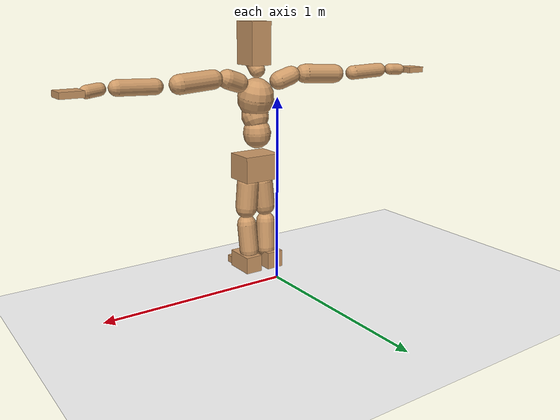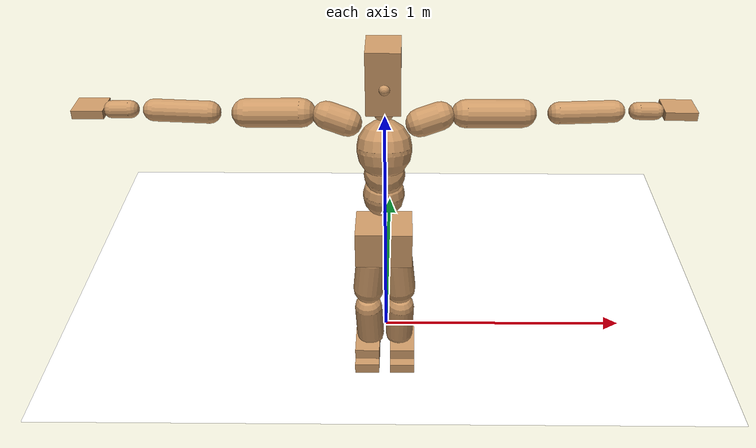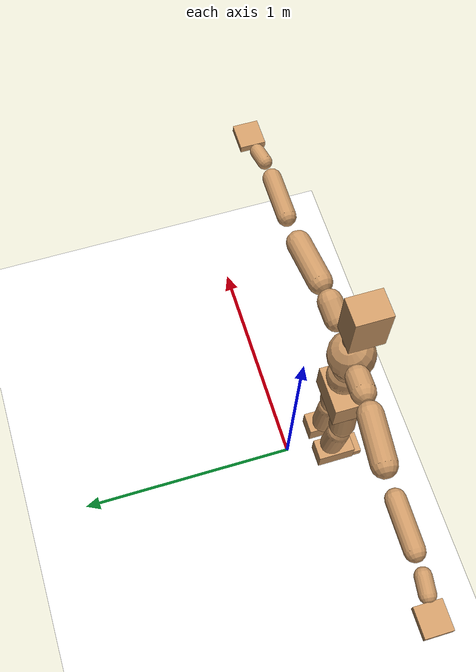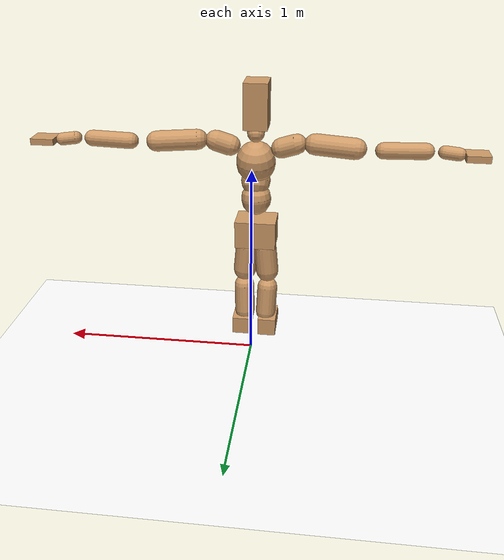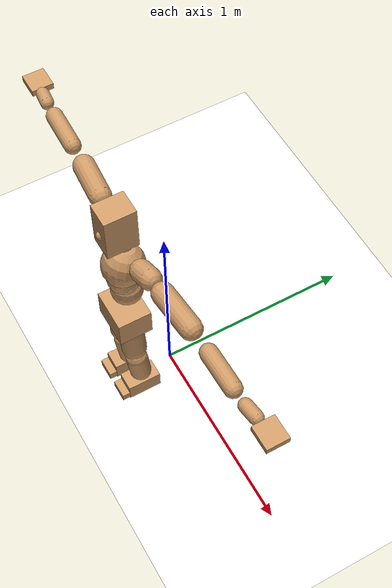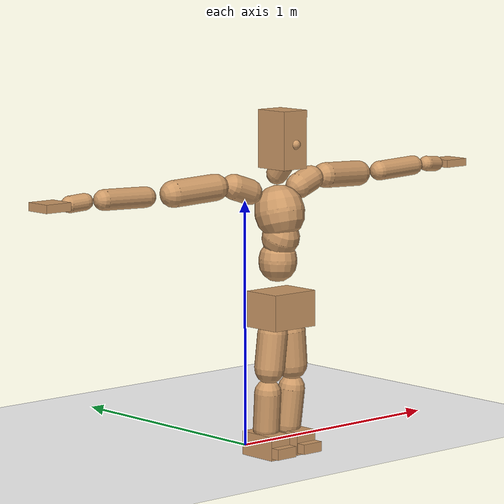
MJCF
<mujoco model="humanoid">
  <option integrator="implicitfast" />

  <visual>
    <global offwidth="1280" offheight="960" />
    <headlight active="1" ambient="0.34 0.34 0.34" diffuse="0.5 0.5 0.5" />
  </visual>

  <default>
    <joint damping="2" stiffness="2" armature="0.01" limited="true" solimplimit="0 .99 .01" />
    <geom condim="1" friction="0.7 0.005 0.0001" solimp=".99 .99 .003" solref="0.015 1" margin="0.001" rgba="0.8 0.6 .4 1" />
    <default class="smplcontact">
      <geom condim="3" friction="1. 0.005 0.0001" solref="0.015 1" solimp="0.98 0.98 0.001" priority="1" />
    </default>
    <default class="stiff_medium">
      <joint stiffness="10" />
    </default>
    <default class="stiff_medium_higher">
      <joint stiffness="50" />
    </default>
    <default class="stiff_high">
      <joint stiffness="100" />
    </default>
  </default>

  <asset>
    <texture type="skybox" builtin="gradient" rgb1="0.99 0.99 0.99" rgb2="0.608 0.828 0.892" width="100" />
    <texture builtin="flat" height="1278" mark="cross" markrgb="1 1 1" name="texgeom" random="0.01" rgb1="0.8 0.6 0.4" rgb2="0.8 0.6 0.4" type="cube" width="127" />
    <texture name="texplane" type="2d" builtin="checker" markrgb="1 1 1" rgb1="0.756 0.772 0.76" rgb2="0.6 0.6 0.6" width="100" height="100" />
    <material name="MatPlane" reflectance="0.5" texture="texplane" texrepeat="1 1" texuniform="true" />
    <material name="geom" texture="texgeom" texuniform="true" />
  </asset>

  <worldbody>
    <light name="tracking_light" pos="0 0 7" dir="0 0 -1" directional="true" cutoff="100" exponent="1" diffuse="1 1 1" specular="0.1 0.1 0.1" mode="trackcom" />
    <camera name="back" pos="0 3 2.4" xyaxes="-1 0 0 0 -1 2" mode="trackcom" />
    <camera name="side" pos="-3 0 2.4" xyaxes="0 -1 0 1 0 2" mode="trackcom" />
    <camera name="front_side" pos="-2.8 -2.8 0.8" xyaxes="0.5 -0.5 0 0.1 0.1 1" mode="trackcom" />
    <geom condim="3" name="floor" pos="0 0 0" rgba="1 1 1 1" size="100 100 .2" type="plane" material="MatPlane" />
    <body name="Pelvis" pos="-0.0018 -0.2233 0.603363" euler="90 0 0">
      <site name="Pelvis" size="0.01" />
      <freejoint name="Pelvis" />
      <geom type="box" pos="-0.0000 -0.0121 -0.0055" size="0.1069 0.0722 0.083" quat="1.0000 0.0000 0.0000 0.0000" density="3165.830099" name="Pelvis" />
      <body name="L_Hip" pos="0.0434375 -0.057125 -0.00425">
        <joint name="L_Hip_x" type="hinge" pos="0 0 0" axis="1 0 0" stiffness="4.682612346938775" range="-160.0 22.92" class="stiff_medium" damping="5.761376063259234" armature="0.003150516248715215"/>
        <joint name="L_Hip_y" type="hinge" pos="0 0 0" axis="0 1 0" stiffness="4.729285204081632" range="-70.0 70.0" class="stiff_medium" damping="5.227190951440424" armature="0.005777516910851337"/>
        <joint name="L_Hip_z" type="hinge" pos="0 0 0" axis="0 0 1" stiffness="4.725288673469388" range="-28.65 90.0" class="stiff_medium" damping="3.8557989532863886" armature="0.003146302077085307"/>
        <geom type="capsule" density="2040.816327" fromto="0.0043125 -0.046875 -0.0005625 0.017125 -0.187625 -0.00225" size="0.0615" name="L_Hip" />
        <body name="L_Knee" pos="0.0214375 -0.2345 -0.0028125">
          <joint name="L_Knee_x" type="hinge" pos="0 0 0" axis="1 0 0" range="-5.16 171.89" damping="3.3147767653831246" armature="0.0034682055009749293" stiffness="0.9900423469387756"/>
          <joint name="L_Knee_y" type="hinge" pos="0 0 0" axis="0 1 0" range="-4.58 6.88" damping="4.406653617352897" armature="0.006327520325715418" stiffness="0.9590346565349543"/>
          <joint name="L_Knee_z" type="hinge" pos="0 0 0" axis="0 0 1" range="-6.88 4.58" damping="3.327252622723652" armature="0.003445606353385676" stiffness="1.0040513265306124"/>
          <geom type="capsule" density="1234.567901" fromto="-0.0016875 -0.04975 -0.0054375 -0.0068125 -0.199 -0.021875" size="0.0541" name="L_Knee" />
          <body name="L_Ankle" pos="-0.0085 -0.24875 -0.0273125">
            <joint name="L_Ankle_x" type="hinge" pos="0 0 0" axis="1 0 0" range="-45.84 45.84" class="stiff_medium" damping="3.6717736084900636" armature="0.005991965080890731" stiffness="6.25"/>
            <joint name="L_Ankle_y" type="hinge" pos="0 0 0" axis="0 1 0" range="-74.48 22.92" class="stiff_medium" damping="1.8585891029846908" armature="0.006141072806637222" stiffness="6.25"/>
            <joint name="L_Ankle_z" type="hinge" pos="0 0 0" axis="0 0 1" range="-4.58 4.58" class="stiff_medium" damping="4.001717943795472" armature="0.00711722066741985" stiffness="6.25"/>
            <geom type="box" pos="0.0145625 -0.0149375 0.015125" size="0.0483 0.0464 0.085" quat="1.0000 0.0000 0.0000 0.0000" density="449.071558" name="L_Ankle" class="smplcontact" />
            <body name="L_Toe" pos="0.0165 -0.034875 0.0745625">
              <joint name="L_Toe_x" type="hinge" pos="0 0 0" axis="1 0 0" range="-91.67 22.92" armature="0.0076832299147366915" damping="1.3859319891986666" stiffness="1.25"/>
              <joint name="L_Toe_y" type="hinge" pos="0 0 0" axis="0 1 0" range="-4.58 4.58" armature="0.008367648440754674" damping="1.446344395428927" stiffness="1.25"/>
              <joint name="L_Toe_z" type="hinge" pos="0 0 0" axis="0 0 1" range="-4.58 4.58" armature="0.009751505861704143" damping="1.5613700603719913" stiffness="1.25"/>
              <geom type="box" pos="-0.001875 0.0034375 0.0155" size="0.0478 0.02 0.0496" quat="1.0000 0.0000 0.0000 0.0000" density="423.206892" name="L_Toe" class="smplcontact" />
            </body>
          </body>
        </body>
      </body>
      <body name="R_Hip" pos="-0.0423125 -0.0565625 -0.0026875">
        <joint name="R_Hip_x" type="hinge" pos="0 0 0" axis="1 0 0" stiffness="4.682612346938775" range="-160.0 22.92" class="stiff_medium" damping="5.761376063259234" armature="0.003150516248715215"/>
        <joint name="R_Hip_y" type="hinge" pos="0 0 0" axis="0 1 0" stiffness="4.729285204081632" range="-70.0 70.0" class="stiff_medium" damping="5.227190951440424" armature="0.005777516910851337"/>
        <joint name="R_Hip_z" type="hinge" pos="0 0 0" axis="0 0 1" stiffness="4.725288673469388" range="-90.0 28.65" class="stiff_medium" damping="3.8557989532863886" armature="0.003146302077085307"/>
        <geom type="capsule" density="2040.816327" fromto="-0.0048125 -0.0478125 -0.001125 -0.019125 -0.191312 -0.0044375" size="0.0606" name="R_Hip" />
        <body name="R_Knee" pos="-0.0239375 -0.239125 -0.0055625">
          <joint name="R_Knee_x" type="hinge" pos="0 0 0" axis="1 0 0" range="-5.16 171.89" damping="3.3147767653831246" armature="0.0034682055009749293" stiffness="0.9900423469387756"/>
          <joint name="R_Knee_y" type="hinge" pos="0 0 0" axis="0 1 0" range="-6.88 4.58" damping="4.406653617352897" armature="0.006327520325715418" stiffness="0.9590346565349543"/>
          <joint name="R_Knee_z" type="hinge" pos="0 0 0" axis="0 0 1" range="-4.58 6.88" damping="3.327252622723652" armature="0.003445606353385676" stiffness="1.0040513265306124"/>
          <geom type="capsule" density="1234.567901" fromto="0.002 -0.0498125 -0.0053125 0.007875 -0.199187 -0.021125" size="0.0541" name="R_Knee" />
          <body name="R_Ankle" pos="0.009875 -0.249 -0.0264375">
            <joint name="R_Ankle_x" type="hinge" pos="0 0 0" axis="1 0 0" range="-45.84 45.84" class="stiff_medium" damping="3.6717736084900636" armature="0.005991965080890731" stiffness="6.25"/>
            <joint name="R_Ankle_y" type="hinge" pos="0 0 0" axis="0 1 0" range="-22.92 74.48" class="stiff_medium" damping="1.8585891029846908" armature="0.006141072806637222" stiffness="6.25"/>
            <joint name="R_Ankle_z" type="hinge" pos="0 0 0" axis="0 0 1" range="-4.58 4.58" class="stiff_medium" damping="4.001717943795472" armature="0.00711722066741985" stiffness="6.25"/>
            <geom type="box" pos="-0.01325 -0.010875 0.016" size="0.0483 0.0478 0.0865" quat="1.0000 0.0000 0.0000 0.0000" density="434.700981" name="R_Ankle" class="smplcontact" />
            <body name="R_Toe" pos="-0.015875 -0.0300625 0.0770625">
              <joint name="R_Toe_x" type="hinge" pos="0 0 0" axis="1 0 0" range="-91.67 22.92" armature="0.0076832299147366915" damping="1.3859319891986666" stiffness="1.25"/>
              <joint name="R_Toe_y" type="hinge" pos="0 0 0" axis="0 1 0" range="-4.58 4.58" armature="0.008367648440754674" damping="1.446344395428927" stiffness="1.25"/>
              <joint name="R_Toe_z" type="hinge" pos="0 0 0" axis="0 0 1" range="-4.58 4.58" armature="0.009751505861704143" damping="1.5613700603719913" stiffness="1.25"/>
              <geom type="box" pos="0.002625 0.0028125 0.0141875" size="0.0479 0.0216 0.0493" quat="1.0000 0.0000 0.0000 0.0000" density="407.384095" name="R_Toe" class="smplcontact" />
            </body>
          </body>
        </body>
      </body>
      <body name="Torso" pos="-0.0025 0.109 -0.0267">
        <joint name="Torso_x" type="hinge" pos="0 0 0" axis="1 0 0" range="-25.78 57.3" class="stiff_medium" damping="16.944789177371327" armature="0.011576079564418832" stiffness="11.023723673469387"/>
        <joint name="Torso_y" type="hinge" pos="0 0 0" axis="0 1 0" range="-57.3 57.3" class="stiff_high" damping="29.115087567135376" armature="0.01937626790595331" stiffness="109.37198124999998"/>
        <joint name="Torso_z" type="hinge" pos="0 0 0" axis="0 0 1" range="-34.38 34.38" class="stiff_high" damping="24.640771515328716" armature="0.014228244849331774" stiffness="106.68350652173912"/>
        <geom type="capsule" density="2040.816327" fromto="0.0025 0.0608 0.0005 0.003 0.0743 0.0006" size="0.0769" name="Torso" />
        <body name="Spine" pos="0.0055 0.1352 0.0011">
          <joint name="Spine_x" type="hinge" pos="0 0 0" axis="1 0 0" stiffness="11.23382224489796" range="-25.78 57.3" class="stiff_medium" damping="17.41106230963079" armature="0.011993349058515367"/>
          <joint name="Spine_y" type="hinge" pos="0 0 0" axis="0 1 0" stiffness="11.67224088888889" range="-57.3 57.3" class="stiff_high" damping="12.051053820080996" armature="0.019440876268553408"/>
          <joint name="Spine_z" type="hinge" pos="0 0 0" axis="0 0 1" stiffness="22.9563125" range="-34.38 34.38" class="stiff_high" damping="16.317554444807218" armature="0.016109257231005376"/>
          <geom type="capsule" density="2040.816327" fromto="0.0007 0.0238 0.0114 0.0008 0.0291 0.014" size="0.0755" name="Spine" />
          <body name="Chest" pos="0.0015 0.0529 0.0254">
            <joint name="Chest_x" type="hinge" pos="0 0 0" axis="1 0 0" stiffness="11.776115531914895" range="-25.78 57.3" class="stiff_medium" damping="18.021102303759772" armature="0.012256829035287797"/>
            <joint name="Chest_y" type="hinge" pos="0 0 0" axis="0 1 0" stiffness="13.448267333333334" range="-57.3 57.3" class="stiff_high" damping="12.937740431789006" armature="0.01944780358729065"/>
            <joint name="Chest_z" type="hinge" pos="0 0 0" axis="0 0 1" stiffness="23.267014782608697" range="-34.38 34.38" class="stiff_high" damping="16.847528832624963" armature="0.016943348915127984"/>
            <geom type="capsule" density="2040.816327" fromto="-0.0009 0.0682 -0.0173 -0.001 0.0833 -0.0212" size="0.1002" name="Chest" />
            <body name="Neck" pos="-0.0028 0.2139 -0.0429">
              <joint name="Neck_x" type="hinge" pos="0 0 0" axis="1 0 0" range="-28.65 57.3" class="stiff_medium_higher" damping="10.0" armature="0.01" stiffness="50.0"/>
              <joint name="Neck_y" type="hinge" pos="0 0 0" axis="0 1 0" range="-40.11 40.11" class="stiff_medium_higher" damping="10.0" armature="0.010000000000000002" stiffness="50.0"/>
              <joint name="Neck_z" type="hinge" pos="0 0 0" axis="0 0 1" range="-40.11 40.11" class="stiff_medium_higher" damping="9.999999999999984" armature="0.009999999999999969" stiffness="50.0"/>
              <geom type="capsule" density="1000" fromto="0.001 0.013 0.0103 0.0041 0.052 0.0411" size="0.0436" name="Neck" />
              <body name="Head" pos="0.0052 0.065 0.0513">
                <joint name="Head_x" type="hinge" pos="0 0 0" axis="1 0 0" range="-28.65 57.3" class="stiff_medium_higher" damping="1.9999999999999967" armature="0.009999999999999967" stiffness="50.0"/>
                <joint name="Head_y" type="hinge" pos="0 0 0" axis="0 1 0" range="-40.11 40.11" class="stiff_medium_higher" damping="2.0" armature="0.01" stiffness="50.0"/>
                <joint name="Head_z" type="hinge" pos="0 0 0" axis="0 0 1" range="-40.11 40.11" class="stiff_medium_higher" damping="1.9999999999999947" armature="0.009999999999999946" stiffness="50.0"/>
                <geom type="box" pos="-0.0042 0.0876 -0.0116" size="0.0606 0.1154 0.076" quat="1.0000 0.0000 0.0000 0.0000" density="1018.069894" name="Head" />
                <geom type="capsule" name="nose" size="0.02 0.01" pos="0 0.07 0.05" quat="1 0 0 0" mass="0" contype="0" conaffinity="0" />
              </body>
            </body>
            <body name="L_Thorax" pos="0.10244 0.15821 -0.04433">
              <joint name="L_Thorax_x" type="hinge" pos="0 0 0" axis="1 0 0" range="-10.89 4.58" class="stiff_medium_higher" damping="31.58973579795788" armature="0.01622387350427033" stiffness="76.88603214285715"/>
              <joint name="L_Thorax_y" type="hinge" pos="0 0 0" axis="0 1 0" range="-28.65 17.19" class="stiff_medium_higher" damping="34.89989559971406" armature="0.01967496307175568" stiffness="77.38278265306123"/>
              <joint name="L_Thorax_z" type="hinge" pos="0 0 0" axis="0 0 1" range="-31.51 40.11" class="stiff_medium_higher" damping="34.901462278801546" armature="0.019678125977203684" stiffness="77.37729132653061"/>
              <geom type="capsule" density="1000" fromto="0.02366 0.00793 -0.00234 0.09464 0.03172 -0.00923" size="0.0521" name="L_Thorax" />
              <body name="L_Shoulder" pos="0.1183 0.03965 -0.01157">
                <joint name="L_Shoulder_x" type="hinge" pos="0 0 0" axis="1 0 0" range="-97.4 97.4" class="stiff_medium" damping="9.029989056679014" armature="0.014800063709014077" stiffness="15.304120000000001"/>
                <joint name="L_Shoulder_y" type="hinge" pos="0 0 0" axis="0 1 0" range="-108.86 80.21" class="stiff_medium" damping="10.416659800941957" armature="0.019521721968520908" stiffness="15.439610408163267"/>
                <joint name="L_Shoulder_z" type="hinge" pos="0 0 0" axis="0 0 1" range="-97.4 85.94" class="stiff_medium" damping="10.414978319288075" armature="0.019525527681653103" stiffness="15.431617857142857"/>
                <geom type="capsule" density="1000" fromto="0.06747 -0.00338 -0.00715 0.27001 -0.01326 -0.0286" size="0.0517" name="L_Shoulder" />
                <body name="L_Elbow" pos="0.33748 -0.01664 -0.03575">
                  <joint name="L_Elbow_x" type="hinge" pos="0 0 0" axis="1 0 0" range="-17.19 4.58" damping="6.893935965131492" armature="0.012655354053031611" stiffness="3.0043475918367353"/>
                  <joint name="L_Elbow_y" type="hinge" pos="0 0 0" axis="0 1 0" range="-180.0 17.19" damping="8.400044856786582" armature="0.018780901424265525" stiffness="3.005638632653061"/>
                  <joint name="L_Elbow_z" type="hinge" pos="0 0 0" axis="0 0 1" range="-100.84 4.58" damping="8.401427491655665" armature="0.01880082195466484" stiffness="3.003442469387755"/>
                  <geom type="capsule" density="1000" fromto="0.06474 0.00234 -0.00026 0.25922 0.00936 -0.00117" size="0.0405" name="L_Elbow" />
                  <body name="L_Wrist" pos="0.32396 0.0117 -0.00156">
                    <joint name="L_Wrist_x" type="hinge" pos="0 0 0" axis="1 0 0" range="-180.0 22.92" armature="0.012290327941728517" damping="2.5957833940279498" stiffness="2.7412171020408165"/>
                    <joint name="L_Wrist_y" type="hinge" pos="0 0 0" axis="0 1 0" range="-17.19 17.19" armature="0.016530608092611455" damping="3.0218064127612245" stiffness="2.7619413469387752"/>
                    <joint name="L_Wrist_z" type="hinge" pos="0 0 0" axis="0 0 1" range="-22.92 22.92" armature="0.016761001490566033" damping="3.0381836187287843" stiffness="2.7535823877551024"/>
                    <geom type="capsule" density="1000" fromto="0.02184 -0.00208 -0.0039 0.08736 -0.00845 -0.0156" size="0.0318" name="L_Wrist" class="smplcontact" />
                    <body name="L_Hand" pos="0.1092 -0.01066 -0.01937">
                      <joint name="L_Hand_x" type="hinge" pos="0 0 0" axis="1 0 0" range="-17.19 17.19" armature="0.010300606507591879" damping="2.314371487887754" stiffness="2.5999999999999996"/>
                      <joint name="L_Hand_y" type="hinge" pos="0 0 0" axis="0 1 0" range="-51.57 51.57" armature="0.013635420978089568" damping="2.662784052191723" stiffness="2.5999999999999996"/>
                      <joint name="L_Hand_z" type="hinge" pos="0 0 0" axis="0 0 1" range="-91.67 91.67" armature="0.014524361339042313" damping="2.7482117633657714" stiffness="2.5999999999999996"/>
                      <geom type="box" pos="0.06409 0.0013 -0.00754" size="0.0585 0.0158 0.0538" quat="1.0000 0.0000 0.0000 0.0000" density="400.552564" name="L_Hand" class="smplcontact" />
                    </body>
                  </body>
                </body>
              </body>
            </body>
            <body name="R_Thorax" pos="-0.10634 0.15444 -0.05018">
              <joint name="R_Thorax_x" type="hinge" pos="0 0 0" axis="1 0 0" range="-10.89 4.58" class="stiff_medium_higher" damping="31.58973579795788" armature="0.01622387350427033" stiffness="76.88603214285715"/>
              <joint name="R_Thorax_y" type="hinge" pos="0 0 0" axis="0 1 0" range="-17.19 28.65" class="stiff_medium_higher" damping="34.89989559971406" armature="0.01967496307175568" stiffness="77.38278265306123"/>
              <joint name="R_Thorax_z" type="hinge" pos="0 0 0" axis="0 0 1" range="-40.11 31.51" class="stiff_medium_higher" damping="34.901462278801546" armature="0.019678125977203684" stiffness="77.37729132653061"/>
              <geom type="capsule" density="1000" fromto="-0.02496 0.00845 -0.00234 -0.09984 0.0338 -0.00949" size="0.0511" name="R_Thorax" />
              <body name="R_Shoulder" pos="-0.1248 0.04238 -0.01183">
                <joint name="R_Shoulder_x" type="hinge" pos="0 0 0" axis="1 0 0" range="-97.4 97.4" class="stiff_medium" damping="9.029989056679014" armature="0.014800063709014077" stiffness="15.304120000000001"/>
                <joint name="R_Shoulder_y" type="hinge" pos="0 0 0" axis="0 1 0" range="-80.21 108.86" class="stiff_medium" damping="10.416659800941957" armature="0.019521721968520908" stiffness="15.439610408163267"/>
                <joint name="R_Shoulder_z" type="hinge" pos="0 0 0" axis="0 0 1" range="-85.94 97.4" class="stiff_medium" damping="10.414978319288075" armature="0.019525527681653103" stiffness="15.431617857142857"/>
                <geom type="capsule" density="1000" fromto="-0.06591 -0.00351 -0.00559 -0.2639 -0.01391 -0.02223" size="0.0531" name="R_Shoulder" />
                <body name="R_Elbow" pos="-0.32981 -0.01729 -0.02782">
                  <joint name="R_Elbow_x" type="hinge" pos="0 0 0" axis="1 0 0" range="-17.19 4.58" damping="6.893935965131492" armature="0.012655354053031611" stiffness="3.0043475918367353"/>
                  <joint name="R_Elbow_y" type="hinge" pos="0 0 0" axis="0 1 0" range="-17.19 180.0" damping="8.400044856786582" armature="0.018780901424265525" stiffness="3.005638632653061"/>
                  <joint name="R_Elbow_z" type="hinge" pos="0 0 0" axis="0 0 1" range="-4.58 100.84" damping="8.401427491655665" armature="0.01880082195466484" stiffness="3.003442469387755"/>
                  <geom type="capsule" density="1000" fromto="-0.06643 0.00208 -0.00143 -0.26546 0.00806 -0.00572" size="0.0408" name="R_Elbow" />
                  <body name="R_Wrist" pos="-0.33189 0.01014 -0.00728">
                    <joint name="R_Wrist_x" type="hinge" pos="0 0 0" axis="1 0 0" range="-180.0 22.92" armature="0.012290327941728517" damping="2.5957833940279498" stiffness="2.7412171020408165"/>
                    <joint name="R_Wrist_y" type="hinge" pos="0 0 0" axis="0 1 0" range="-17.19 17.19" armature="0.016530608092611455" damping="3.0218064127612245" stiffness="2.7619413469387752"/>
                    <joint name="R_Wrist_z" type="hinge" pos="0 0 0" axis="0 0 1" range="-22.92 22.92" armature="0.016761001490566033" damping="3.0381836187287843" stiffness="2.7535823877551024"/>
                    <geom type="capsule" density="1000" fromto="-0.02197 -0.00156 -0.00273 -0.08801 -0.00637 -0.01079" size="0.0326" name="R_Wrist" class="smplcontact" />
                    <body name="R_Hand" pos="-0.10998 -0.00793 -0.01339">
                      <joint name="R_Hand_x" type="hinge" pos="0 0 0" axis="1 0 0" range="-17.19 17.19" armature="0.010300606507591879" damping="2.314371487887754" stiffness="2.5999999999999996"/>
                      <joint name="R_Hand_y" type="hinge" pos="0 0 0" axis="0 1 0" range="-51.57 51.57" armature="0.013635420978089568" damping="2.662784052191723" stiffness="2.5999999999999996"/>
                      <joint name="R_Hand_z" type="hinge" pos="0 0 0" axis="0 0 1" range="-91.67 91.67" armature="0.014524361339042313" damping="2.7482117633657714" stiffness="2.5999999999999996"/>
                      <geom type="box" pos="-0.06006 -0.00117 -0.01027" size="0.0569 0.0164 0.0546" quat="1.0000 0.0000 0.0000 0.0000" density="403.679611" name="R_Hand" class="smplcontact" />
                    </body>
                  </body>
                </body>
              </body>
            </body>
          </body>
        </body>
      </body>
    </body>
  </worldbody>
  <actuator>
    <general name="L_Hip_x" joint="L_Hip_x" biastype="affine" gainprm="134.5455305788832" biasprm="-100.82823820114426 -84.28702224489795 -0.7681834751012312" ctrllimited="true" ctrlrange="-1 1" forcerange="-168.5740444897959 168.5740444897959" />
    <general name="L_Hip_y" joint="L_Hip_y" biastype="affine" gainprm="104.00241357711633" biasprm="0.0 -85.12713367346939 -1.0454381902880847" ctrllimited="true" ctrlrange="-1 1" forcerange="-170.25426734693878 170.25426734693878" />
    <general name="L_Hip_z" joint="L_Hip_z" biastype="affine" gainprm="88.0675601736452" biasprm="45.53682947031718 -85.05519612244898 -0.7711597906572777" ctrllimited="true" ctrlrange="-1 1" forcerange="-170.11039224489795 170.11039224489795" />
    <general name="L_Knee_x" joint="L_Knee_x" biastype="affine" gainprm="137.6700859239888" biasprm="129.64548673316378 -89.1038112244898 -0.8286941913457812" ctrllimited="true" ctrlrange="-1 1" forcerange="-178.2076224489796 178.2076224489796" />
    <general name="L_Knee_y" joint="L_Knee_y" biastype="affine" gainprm="8.63194770327106" biasprm="1.7324153331172283 -86.3131190881459 -1.1016634043382243" ctrllimited="true" ctrlrange="-1 1" forcerange="-172.6262381762918 172.6262381762918" />
    <general name="L_Knee_z" joint="L_Knee_z" biastype="affine" gainprm="9.03712757714746" biasprm="-1.8137341559720035 -90.36461938775511 -0.831813155680913" ctrllimited="true" ctrlrange="-1 1" forcerange="-180.72923877551023 180.72923877551023" />
    <general name="L_Ankle_x" joint="L_Ankle_x" biastype="affine" gainprm="45.003314762673796" biasprm="0.0 -56.25 -1.2239245361633546" ctrllimited="true" ctrlrange="-1 1" forcerange="-112.5 112.5" />
    <general name="L_Ankle_y" joint="L_Ankle_y" biastype="affine" gainprm="47.811113196819676" biasprm="-25.309455815482774 -56.25 -1.2390594019897938" ctrllimited="true" ctrlrange="-1 1" forcerange="-112.5 112.5" />
    <general name="L_Ankle_z" joint="L_Ankle_z" biastype="affine" gainprm="4.496404485450391" biasprm="0.0 -56.25 -1.3339059812651575" ctrllimited="true" ctrlrange="-1 1" forcerange="-112.5 112.5" />
    <general name="L_Toe_x" joint="L_Toe_x" biastype="affine" gainprm="44.999387771856796" biasprm="-26.998061866787282 -45.0 -0.5543727956794666" ctrllimited="true" ctrlrange="-1 1" forcerange="-90.0 90.0" />
    <general name="L_Toe_y" joint="L_Toe_y" biastype="affine" gainprm="3.597123588360313" biasprm="0.0 -45.0 -0.5785377581715708" ctrllimited="true" ctrlrange="-1 1" forcerange="-90.0 90.0" />
    <general name="L_Toe_z" joint="L_Toe_z" biastype="affine" gainprm="3.597123588360313" biasprm="0.0 -45.0 -0.6245480241487966" ctrllimited="true" ctrlrange="-1 1" forcerange="-90.0 90.0" />
    <general name="R_Hip_x" joint="R_Hip_x" biastype="affine" gainprm="134.5455305788832" biasprm="-100.82823820114426 -84.28702224489795 -0.7681834751012312" ctrllimited="true" ctrlrange="-1 1" forcerange="-168.5740444897959 168.5740444897959" />
    <general name="R_Hip_y" joint="R_Hip_y" biastype="affine" gainprm="104.00241357711633" biasprm="0.0 -85.12713367346939 -1.0454381902880847" ctrllimited="true" ctrlrange="-1 1" forcerange="-170.25426734693878 170.25426734693878" />
    <general name="R_Hip_z" joint="R_Hip_z" biastype="affine" gainprm="88.0675601736452" biasprm="-45.53682947031718 -85.05519612244898 -0.7711597906572777" ctrllimited="true" ctrlrange="-1 1" forcerange="-170.11039224489795 170.11039224489795" />
    <general name="R_Knee_x" joint="R_Knee_x" biastype="affine" gainprm="137.6700859239888" biasprm="129.64548673316378 -89.1038112244898 -0.8286941913457812" ctrllimited="true" ctrlrange="-1 1" forcerange="-178.2076224489796 178.2076224489796" />
    <general name="R_Knee_y" joint="R_Knee_y" biastype="affine" gainprm="8.63194770327106" biasprm="-1.7324153331172283 -86.3131190881459 -1.1016634043382243" ctrllimited="true" ctrlrange="-1 1" forcerange="-172.6262381762918 172.6262381762918" />
    <general name="R_Knee_z" joint="R_Knee_z" biastype="affine" gainprm="9.03712757714746" biasprm="1.8137341559720035 -90.36461938775511 -0.831813155680913" ctrllimited="true" ctrlrange="-1 1" forcerange="-180.72923877551023 180.72923877551023" />
    <general name="R_Ankle_x" joint="R_Ankle_x" biastype="affine" gainprm="45.003314762673796" biasprm="0.0 -56.25 -1.2239245361633546" ctrllimited="true" ctrlrange="-1 1" forcerange="-112.5 112.5" />
    <general name="R_Ankle_y" joint="R_Ankle_y" biastype="affine" gainprm="47.811113196819676" biasprm="25.309455815482774 -56.25 -1.2390594019897938" ctrllimited="true" ctrlrange="-1 1" forcerange="-112.5 112.5" />
    <general name="R_Ankle_z" joint="R_Ankle_z" biastype="affine" gainprm="4.496404485450391" biasprm="0.0 -56.25 -1.3339059812651575" ctrllimited="true" ctrlrange="-1 1" forcerange="-112.5 112.5" />
    <general name="R_Toe_x" joint="R_Toe_x" biastype="affine" gainprm="44.999387771856796" biasprm="-26.998061866787282 -45.0 -0.5543727956794666" ctrllimited="true" ctrlrange="-1 1" forcerange="-90.0 90.0" />
    <general name="R_Toe_y" joint="R_Toe_y" biastype="affine" gainprm="3.597123588360313" biasprm="0.0 -45.0 -0.5785377581715708" ctrllimited="true" ctrlrange="-1 1" forcerange="-90.0 90.0" />
    <general name="R_Toe_z" joint="R_Toe_z" biastype="affine" gainprm="3.597123588360313" biasprm="0.0 -45.0 -0.6245480241487966" ctrllimited="true" ctrlrange="-1 1" forcerange="-90.0 90.0" />
    <general name="Torso_x" joint="Torso_x" biastype="affine" gainprm="191.81537709933156" biasprm="72.77347961207185 -264.5693681632653 -4.518610447299021" ctrllimited="true" ctrlrange="-1 1" forcerange="-396.85405224489796 396.85405224489796" />
    <general name="Torso_y" joint="Torso_y" biastype="affine" gainprm="262.51209058192023" biasprm="0.0 -262.492755 -5.823017513427075" ctrllimited="true" ctrlrange="-1 1" forcerange="-393.7391324999999 393.7391324999999" />
    <general name="Torso_z" joint="Torso_z" biastype="affine" gainprm="153.63556556747483" biasprm="0.0 -256.0404156521739 -4.928154303065743" ctrllimited="true" ctrlrange="-1 1" forcerange="-384.0606234782608 384.0606234782608" />
    <general name="Spine_x" joint="Spine_x" biastype="affine" gainprm="195.47114151254812" biasprm="74.16045234082229 -269.61173387755105 -4.642949949234877" ctrllimited="true" ctrlrange="-1 1" forcerange="-404.41760081632657 404.41760081632657" />
    <general name="Spine_y" joint="Spine_y" biastype="affine" gainprm="280.1544163778229" biasprm="0.0 -280.13378133333333 -6.025526910040498" ctrllimited="true" ctrlrange="-1 1" forcerange="-420.200672 420.200672" />
    <general name="Spine_z" joint="Spine_z" biastype="affine" gainprm="165.29762515644848" biasprm="0.0 -275.47575 -5.439184814935739" ctrllimited="true" ctrlrange="-1 1" forcerange="-413.213625 413.213625" />
    <general name="Chest_x" joint="Chest_x" biastype="affine" gainprm="204.90717188021173" biasprm="77.74041956745634 -282.62677276595747 -4.8056272810026055" ctrllimited="true" ctrlrange="-1 1" forcerange="-423.94015914893623 423.94015914893623" />
    <general name="Chest_y" joint="Chest_y" biastype="affine" gainprm="322.78219083444463" biasprm="0.0 -322.758416 -6.468870215894503" ctrllimited="true" ctrlrange="-1 1" forcerange="-484.1376240000001 484.1376240000001" />
    <general name="Chest_z" joint="Chest_z" biastype="affine" gainprm="167.53484637592376" biasprm="0.0 -279.20417739130437 -5.615842944208321" ctrllimited="true" ctrlrange="-1 1" forcerange="-418.8062660869566 418.8062660869566" />
    <general name="Neck_x" joint="Neck_x" biastype="affine" gainprm="27.00198885760427" biasprm="9.000662952534757 -36.0 -0.8" ctrllimited="true" ctrlrange="-1 1" forcerange="-72.0 72.0" />
    <general name="Neck_y" joint="Neck_y" biastype="affine" gainprm="25.20185626709732" biasprm="0.0 -36.0 -0.8" ctrllimited="true" ctrlrange="-1 1" forcerange="-72.0 72.0" />
    <general name="Neck_z" joint="Neck_z" biastype="affine" gainprm="25.20185626709732" biasprm="0.0 -36.0 -0.7999999999999988" ctrllimited="true" ctrlrange="-1 1" forcerange="-72.0 72.0" />
    <general name="Head_x" joint="Head_x" biastype="affine" gainprm="18.001325905069514" biasprm="6.000441968356505 -24.0 -0.7999999999999987" ctrllimited="true" ctrlrange="-1 1" forcerange="-48.0 48.0" />
    <general name="Head_y" joint="Head_y" biastype="affine" gainprm="16.801237511398213" biasprm="0.0 -24.0 -0.8" ctrllimited="true" ctrlrange="-1 1" forcerange="-48.0 48.0" />
    <general name="Head_z" joint="Head_z" biastype="affine" gainprm="16.801237511398213" biasprm="0.0 -24.0 -0.7999999999999979" ctrllimited="true" ctrlrange="-1 1" forcerange="-48.0 48.0" />
    <general name="L_Thorax_x" joint="L_Thorax_x" biastype="affine" gainprm="24.911299101430362" biasprm="-10.160975910150333 -184.52647714285715 -2.5271788638366304" ctrllimited="true" ctrlrange="-1 1" forcerange="-369.0529542857143 369.0529542857143" />
    <general name="L_Thorax_y" joint="L_Thorax_y" biastype="affine" gainprm="74.29294346554212" biasprm="-18.57323586638553 -185.71867836734694 -2.7919916479771247" ctrllimited="true" ctrlrange="-1 1" forcerange="-371.4373567346939 371.4373567346939" />
    <general name="L_Thorax_z" joint="L_Thorax_z" biastype="affine" gainprm="116.06638363736599" biasprm="13.937041319203399 -185.70549918367348 -2.7921169823041243" ctrllimited="true" ctrlrange="-1 1" forcerange="-371.41099836734696 371.41099836734696" />
    <general name="L_Shoulder_x" joint="L_Shoulder_x" biastype="affine" gainprm="124.8779970044095" biasprm="0.0 -73.459776 -2.4079970817810707" ctrllimited="true" ctrlrange="-1 1" forcerange="-146.919552 146.919552" />
    <general name="L_Shoulder_y" joint="L_Shoulder_y" biastype="affine" gainprm="122.27778721627745" biasprm="-18.528897253643354 -74.11012995918368 -2.777775946917856" ctrllimited="true" ctrlrange="-1 1" forcerange="-148.22025991836736 148.22025991836736" />
    <general name="L_Shoulder_z" joint="L_Shoulder_z" biastype="affine" gainprm="118.51062714799397" biasprm="-7.40772219437119 -74.0717657142857 -2.7773275518101537" ctrllimited="true" ctrlrange="-1 1" forcerange="-148.1435314285714 148.1435314285714" />
    <general name="L_Elbow_x" joint="L_Elbow_x" biastype="affine" gainprm="20.54747587592092" biasprm="-11.901868203737386 -108.15651330612246 -1.1030297544210388" ctrllimited="true" ctrlrange="-1 1" forcerange="-216.31302661224493 216.31302661224493" />
    <general name="L_Elbow_y" joint="L_Elbow_y" biastype="affine" gainprm="186.19650463217005" biasprm="-153.73321628461693 -108.20299077551019 -1.344007177085853" ctrllimited="true" ctrlrange="-1 1" forcerange="-216.40598155102037 216.40598155102037" />
    <general name="L_Elbow_z" joint="L_Elbow_z" biastype="affine" gainprm="99.4700192692226" biasprm="-90.82701626688834 -108.12392889795919 -1.3442283986649066" ctrllimited="true" ctrlrange="-1 1" forcerange="-216.24785779591838 216.24785779591838" />
    <general name="L_Wrist_x" joint="L_Wrist_x" biastype="affine" gainprm="29.125065357690858" biasprm="-22.545659700305933 -16.447302612244897 -1.03831335761118" ctrllimited="true" ctrlrange="-1 1" forcerange="-32.894605224489794 32.894605224489794" />
    <general name="L_Wrist_y" joint="L_Wrist_y" biastype="affine" gainprm="4.971860631693158" biasprm="0.0 -16.571648081632652 -1.20872256510449" ctrllimited="true" ctrlrange="-1 1" forcerange="-33.143296163265305 33.143296163265305" />
    <general name="L_Wrist_z" joint="L_Wrist_z" biastype="affine" gainprm="6.609084529125214" biasprm="0.0 -16.521494326530615 -1.215273447491514" ctrllimited="true" ctrlrange="-1 1" forcerange="-33.04298865306123 33.04298865306123" />
    <general name="L_Hand_x" joint="L_Hand_x" biastype="affine" gainprm="4.680344735318074" biasprm="0.0 -15.599999999999998 -0.9257485951551017" ctrllimited="true" ctrlrange="-1 1" forcerange="-31.199999999999996 31.199999999999996" />
    <general name="L_Hand_y" joint="L_Hand_y" biastype="affine" gainprm="14.041034205954219" biasprm="0.0 -15.599999999999998 -1.0651136208766894" ctrllimited="true" ctrlrange="-1 1" forcerange="-31.199999999999996 31.199999999999996" />
    <general name="L_Hand_z" joint="L_Hand_z" biastype="affine" gainprm="24.959115874729946" biasprm="0.0 -15.599999999999998 -1.0992847053463086" ctrllimited="true" ctrlrange="-1 1" forcerange="-31.199999999999996 31.199999999999996" />
    <general name="R_Thorax_x" joint="R_Thorax_x" biastype="affine" gainprm="24.911299101430362" biasprm="-10.160975910150333 -184.52647714285715 -2.5271788638366304" ctrllimited="true" ctrlrange="-1 1" forcerange="-369.0529542857143 369.0529542857143" />
    <general name="R_Thorax_y" joint="R_Thorax_y" biastype="affine" gainprm="74.29294346554212" biasprm="18.57323586638552 -185.71867836734694 -2.7919916479771247" ctrllimited="true" ctrlrange="-1 1" forcerange="-371.4373567346939 371.4373567346939" />
    <general name="R_Thorax_z" joint="R_Thorax_z" biastype="affine" gainprm="116.06638363736599" biasprm="-13.937041319203399 -185.70549918367348 -2.7921169823041243" ctrllimited="true" ctrlrange="-1 1" forcerange="-371.41099836734696 371.41099836734696" />
    <general name="R_Shoulder_x" joint="R_Shoulder_x" biastype="affine" gainprm="124.8779970044095" biasprm="0.0 -73.459776 -2.4079970817810707" ctrllimited="true" ctrlrange="-1 1" forcerange="-146.919552 146.919552" />
    <general name="R_Shoulder_y" joint="R_Shoulder_y" biastype="affine" gainprm="122.27778721627745" biasprm="18.528897253643354 -74.11012995918368 -2.777775946917856" ctrllimited="true" ctrlrange="-1 1" forcerange="-148.22025991836736 148.22025991836736" />
    <general name="R_Shoulder_z" joint="R_Shoulder_z" biastype="affine" gainprm="118.51062714799397" biasprm="7.407722194371173 -74.0717657142857 -2.7773275518101537" ctrllimited="true" ctrlrange="-1 1" forcerange="-148.1435314285714 148.1435314285714" />
    <general name="R_Elbow_x" joint="R_Elbow_x" biastype="affine" gainprm="20.54747587592092" biasprm="-11.901868203737386 -108.15651330612246 -1.1030297544210388" ctrllimited="true" ctrlrange="-1 1" forcerange="-216.31302661224493 216.31302661224493" />
    <general name="R_Elbow_y" joint="R_Elbow_y" biastype="affine" gainprm="186.19650463217005" biasprm="153.73321628461693 -108.20299077551019 -1.344007177085853" ctrllimited="true" ctrlrange="-1 1" forcerange="-216.40598155102037 216.40598155102037" />
    <general name="R_Elbow_z" joint="R_Elbow_z" biastype="affine" gainprm="99.4700192692226" biasprm="90.82701626688832 -108.12392889795919 -1.3442283986649066" ctrllimited="true" ctrlrange="-1 1" forcerange="-216.24785779591838 216.24785779591838" />
    <general name="R_Wrist_x" joint="R_Wrist_x" biastype="affine" gainprm="29.125065357690858" biasprm="-22.545659700305933 -16.447302612244897 -1.03831335761118" ctrllimited="true" ctrlrange="-1 1" forcerange="-32.894605224489794 32.894605224489794" />
    <general name="R_Wrist_y" joint="R_Wrist_y" biastype="affine" gainprm="4.971860631693158" biasprm="0.0 -16.571648081632652 -1.20872256510449" ctrllimited="true" ctrlrange="-1 1" forcerange="-33.143296163265305 33.143296163265305" />
    <general name="R_Wrist_z" joint="R_Wrist_z" biastype="affine" gainprm="6.609084529125214" biasprm="0.0 -16.521494326530615 -1.215273447491514" ctrllimited="true" ctrlrange="-1 1" forcerange="-33.04298865306123 33.04298865306123" />
    <general name="R_Hand_x" joint="R_Hand_x" biastype="affine" gainprm="4.680344735318074" biasprm="0.0 -15.599999999999998 -0.9257485951551017" ctrllimited="true" ctrlrange="-1 1" forcerange="-31.199999999999996 31.199999999999996" />
    <general name="R_Hand_y" joint="R_Hand_y" biastype="affine" gainprm="14.041034205954219" biasprm="0.0 -15.599999999999998 -1.0651136208766894" ctrllimited="true" ctrlrange="-1 1" forcerange="-31.199999999999996 31.199999999999996" />
    <general name="R_Hand_z" joint="R_Hand_z" biastype="affine" gainprm="24.959115874729946" biasprm="0.0 -15.599999999999998 -1.0992847053463086" ctrllimited="true" ctrlrange="-1 1" forcerange="-31.199999999999996 31.199999999999996" />
  </actuator>
  <contact>
    <exclude body1="Torso" body2="Chest" />
    <exclude body1="Head" body2="Chest" />
    <exclude body1="R_Knee" body2="R_Toe" />
    <exclude body1="R_Knee" body2="L_Ankle" />
    <exclude body1="R_Knee" body2="L_Toe" />
    <exclude body1="L_Knee" body2="L_Toe" />
    <exclude body1="L_Knee" body2="R_Ankle" />
    <exclude body1="L_Knee" body2="R_Toe" />
    <exclude body1="L_Shoulder" body2="Chest" />
    <exclude body1="R_Shoulder" body2="Chest" />
  </contact>
  <sensor>
    <framelinvel name="sensor_Pelvis_framelinvel" objtype="xbody" objname="Pelvis" />
    <framelinvel name="sensor_L_Hip_framelinvel" objtype="xbody" objname="L_Hip" />
    <framelinvel name="sensor_L_Knee_framelinvel" objtype="xbody" objname="L_Knee" />
    <framelinvel name="sensor_L_Ankle_framelinvel" objtype="xbody" objname="L_Ankle" />
    <framelinvel name="sensor_L_Toe_framelinvel" objtype="xbody" objname="L_Toe" />
    <framelinvel name="sensor_R_Hip_framelinvel" objtype="xbody" objname="R_Hip" />
    <framelinvel name="sensor_R_Knee_framelinvel" objtype="xbody" objname="R_Knee" />
    <framelinvel name="sensor_R_Ankle_framelinvel" objtype="xbody" objname="R_Ankle" />
    <framelinvel name="sensor_R_Toe_framelinvel" objtype="xbody" objname="R_Toe" />
    <framelinvel name="sensor_Torso_framelinvel" objtype="xbody" objname="Torso" />
    <framelinvel name="sensor_Spine_framelinvel" objtype="xbody" objname="Spine" />
    <framelinvel name="sensor_Chest_framelinvel" objtype="xbody" objname="Chest" />
    <framelinvel name="sensor_Neck_framelinvel" objtype="xbody" objname="Neck" />
    <framelinvel name="sensor_Head_framelinvel" objtype="xbody" objname="Head" />
    <framelinvel name="sensor_L_Thorax_framelinvel" objtype="xbody" objname="L_Thorax" />
    <framelinvel name="sensor_L_Shoulder_framelinvel" objtype="xbody" objname="L_Shoulder" />
    <framelinvel name="sensor_L_Elbow_framelinvel" objtype="xbody" objname="L_Elbow" />
    <framelinvel name="sensor_L_Wrist_framelinvel" objtype="xbody" objname="L_Wrist" />
    <framelinvel name="sensor_L_Hand_framelinvel" objtype="xbody" objname="L_Hand" />
    <framelinvel name="sensor_R_Thorax_framelinvel" objtype="xbody" objname="R_Thorax" />
    <framelinvel name="sensor_R_Shoulder_framelinvel" objtype="xbody" objname="R_Shoulder" />
    <framelinvel name="sensor_R_Elbow_framelinvel" objtype="xbody" objname="R_Elbow" />
    <framelinvel name="sensor_R_Wrist_framelinvel" objtype="xbody" objname="R_Wrist" />
    <framelinvel name="sensor_R_Hand_framelinvel" objtype="xbody" objname="R_Hand" />
    <frameangvel name="sensor_Pelvis_frameangvel" objtype="xbody" objname="Pelvis" />
    <frameangvel name="sensor_L_Hip_frameangvel" objtype="xbody" objname="L_Hip" />
    <frameangvel name="sensor_L_Knee_frameangvel" objtype="xbody" objname="L_Knee" />
    <frameangvel name="sensor_L_Ankle_frameangvel" objtype="xbody" objname="L_Ankle" />
    <frameangvel name="sensor_L_Toe_frameangvel" objtype="xbody" objname="L_Toe" />
    <frameangvel name="sensor_R_Hip_frameangvel" objtype="xbody" objname="R_Hip" />
    <frameangvel name="sensor_R_Knee_frameangvel" objtype="xbody" objname="R_Knee" />
    <frameangvel name="sensor_R_Ankle_frameangvel" objtype="xbody" objname="R_Ankle" />
    <frameangvel name="sensor_R_Toe_frameangvel" objtype="xbody" objname="R_Toe" />
    <frameangvel name="sensor_Torso_frameangvel" objtype="xbody" objname="Torso" />
    <frameangvel name="sensor_Spine_frameangvel" objtype="xbody" objname="Spine" />
    <frameangvel name="sensor_Chest_frameangvel" objtype="xbody" objname="Chest" />
    <frameangvel name="sensor_Neck_frameangvel" objtype="xbody" objname="Neck" />
    <frameangvel name="sensor_Head_frameangvel" objtype="xbody" objname="Head" />
    <frameangvel name="sensor_L_Thorax_frameangvel" objtype="xbody" objname="L_Thorax" />
    <frameangvel name="sensor_L_Shoulder_frameangvel" objtype="xbody" objname="L_Shoulder" />
    <frameangvel name="sensor_L_Elbow_frameangvel" objtype="xbody" objname="L_Elbow" />
    <frameangvel name="sensor_L_Wrist_frameangvel" objtype="xbody" objname="L_Wrist" />
    <frameangvel name="sensor_L_Hand_frameangvel" objtype="xbody" objname="L_Hand" />
    <frameangvel name="sensor_R_Thorax_frameangvel" objtype="xbody" objname="R_Thorax" />
    <frameangvel name="sensor_R_Shoulder_frameangvel" objtype="xbody" objname="R_Shoulder" />
    <frameangvel name="sensor_R_Elbow_frameangvel" objtype="xbody" objname="R_Elbow" />
    <frameangvel name="sensor_R_Wrist_frameangvel" objtype="xbody" objname="R_Wrist" />
    <frameangvel name="sensor_R_Hand_frameangvel" objtype="xbody" objname="R_Hand" />
    <subtreelinvel name="Chest_subtreelinvel" body="Chest" />
    <gyro name="Pelvis_gyro" site="Pelvis" />
  </sensor>
</mujoco>
